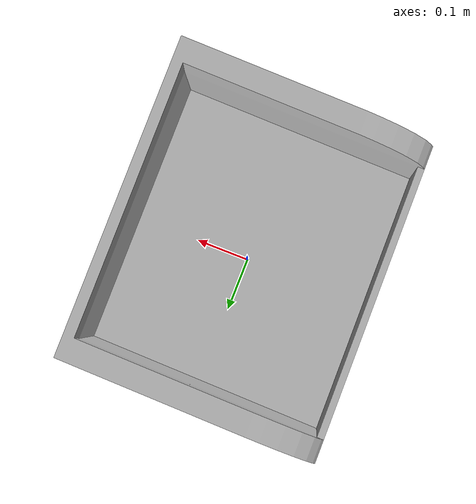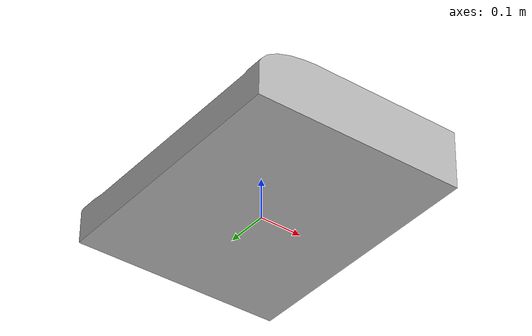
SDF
<?xml version="1.0" ?>
<sdf version="1.6">
  <model name="yellow_bin">
    <static>true</static>
    <link name="link">
        <collision name="bin_underneath">
          <pose>0.0 -0.007 0.001 0 0 0</pose>
          <max_contacts>10</max_contacts>
          <surface>
            <contact>
              <ode>
                <max_vel>0.0</max_vel>
                <min_depth>0.0001</min_depth>
              </ode>
            </contact>
          </surface>
          <geometry>
            <box>
              <size>0.5 0.623 0.025</size>
            </box>
          </geometry>
        </collision>

        <collision name="bin_back">
          <pose>0.24 -0.014 0.075 0 0 0</pose>
          <max_contacts>10</max_contacts>
          <surface>
            <contact>
              <ode>
                <max_vel>0.0</max_vel>
                <min_depth>0.001</min_depth>
              </ode>
            </contact>
          </surface>
          <geometry>
            <box>
              <size>0.02 0.532 0.145</size>
            </box>
          </geometry>
        </collision>

        <collision name="bin_front_wall">
          <pose>-0.24 -0.007 0.042 0 0 0.01</pose>
          <max_contacts>10</max_contacts>
          <surface>
            <contact>
              <ode>
                <max_vel>0.0</max_vel>
                <min_depth>0.001</min_depth>
              </ode>
            </contact>
          </surface>
          <geometry>
            <box>
              <size>0.015 0.525 0.084</size>
            </box>
          </geometry>
        </collision>

        <collision name="bin_left_wall">
          <pose>0 0.273 0.075 0 0 -0.02</pose>
          <max_contacts>10</max_contacts>
          <surface>
            <contact>
              <ode>
                <max_vel>0.0</max_vel>
                <min_depth>0.001</min_depth>
              </ode>
            </contact>
          </surface>
          <geometry>
            <box>
              <size>0.5 0.05 0.145</size>
            </box>
          </geometry>
        </collision>

        <collision name="bin_right_wall">
          <pose>0 -0.294 0.075 0 0 -0.04</pose>
          <max_contacts>10</max_contacts>
          <surface>
            <contact>
              <ode>
                <max_vel>0.0</max_vel>
                <min_depth>0.001</min_depth>
              </ode>
            </contact>
          </surface>
          <geometry>
            <box>
              <size>0.5 0.05 0.145</size>
            </box>
          </geometry>
        </collision>

      <visual name="visual">
          <pose>0.0 0 0 0 0 0.015</pose>
        <geometry>
          <mesh>
            <scale>1.0 2.1 1.0</scale>
            <uri>model://yellow_bin_ariac/meshes/yellow_bin.obj</uri>
          </mesh>
        </geometry>
      </visual>
    </link>
  </model>
</sdf>
